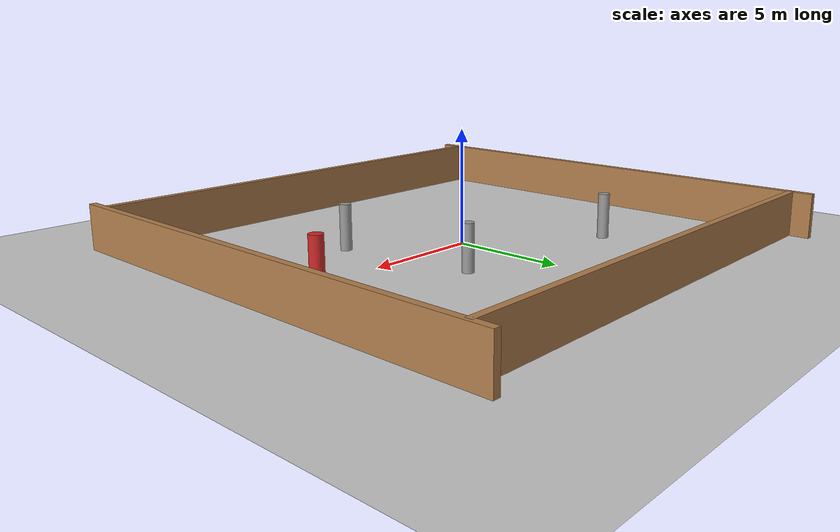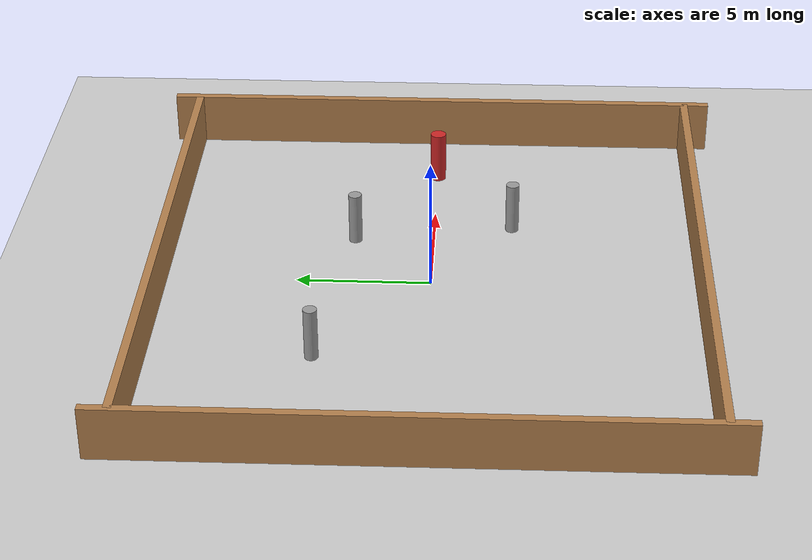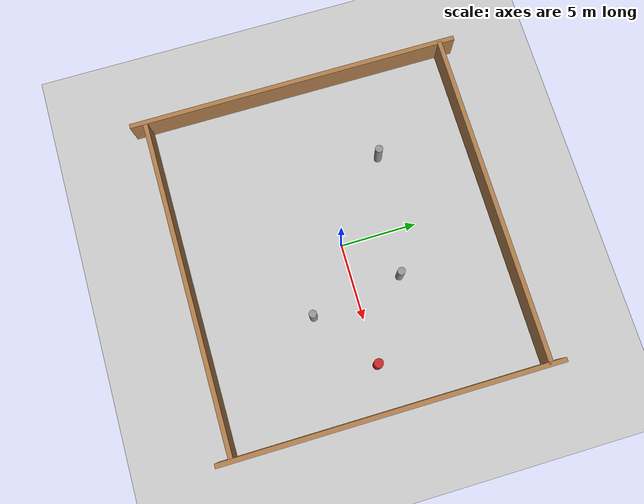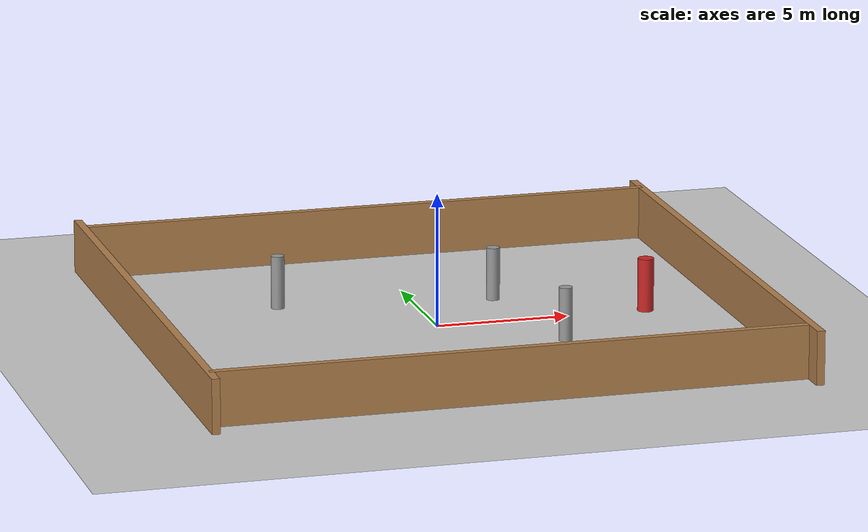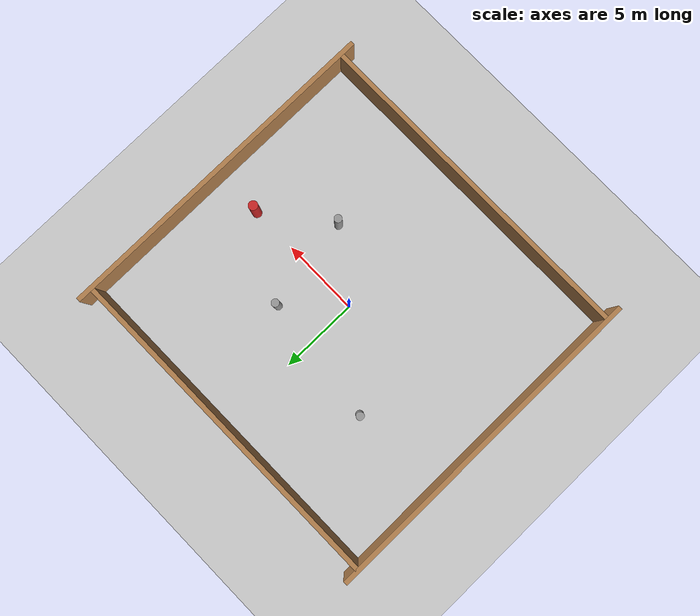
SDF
<?xml version="1.0" ?>
<sdf version="1.6">
  <world name="default">
    <gui>
      <camera name="user_camera">
        <pose>-5 0 2 0 0.3 0</pose>
      </camera>
    </gui>
    <physics type="ode">
      <ode>
        <solver>
          <type>quick</type>
          <iters>100</iters>
          <sor>1.0</sor>
        </solver>
        <constraints>
          <cfm>0.0</cfm>
          <erp>0.2</erp>
          <contact_max_correcting_vel>0.1</contact_max_correcting_vel>
          <contact_surface_layer>0.0</contact_surface_layer>
        </constraints>
      </ode>
      <real_time_update_rate>-1</real_time_update_rate>
    </physics>
    <gravity>0 0 -9.8</gravity>

    <!-- Plugin to publish /gazebo/model_states and /gazebo/link_states for ROS 2 -->
    <plugin name="gazebo_ros_state" filename="libgazebo_ros_state.so">
      <ros>
        <namespace>/gazebo</namespace>
      </ros>
      <update_rate>50.0</update_rate>
    </plugin>

    <include>
      <uri>model://sun</uri>
    </include>

    <model name="ground_plane">
      <static>true</static>
      <link name="link">
        <collision name="collision">
          <geometry>
            <plane>
              <normal>0 0 1</normal>
              <size>5000 5000</size>
            </plane>
          </geometry>
          <surface>
            <friction>
              <ode>
                <mu>100</mu>
                <mu2>50</mu2>
              </ode>
            </friction>
          </surface>
        </collision>
        <visual name="runway">
          <pose>0 0 0.005 0 0 0</pose>
          <cast_shadows>false</cast_shadows>
          <geometry>
            <plane>
              <normal>0 0 1</normal>
              <size>1829 45</size>
            </plane>
          </geometry>
          <material>
            <script>
              <uri>file://media/materials/scripts/gazebo.material</uri>
              <name>Gazebo/Runway</name>
            </script>
          </material>
        </visual>
        <visual name="grass">
          <pose>0 0 -0.1 0 0 0</pose>
          <cast_shadows>false</cast_shadows>
          <geometry>
            <plane>
              <normal>0 0 1</normal>
              <size>5000 5000</size>
            </plane>
          </geometry>
          <material>
            <script>
              <uri>file://media/materials/scripts/gazebo.material</uri>
              <name>Gazebo/Grass</name>
            </script>
          </material>
        </visual>
      </link>
    </model>

    <!-- ==================== Environmental Obstacles for LiDAR Range Testing ==================== -->
    <!-- Pillar 1 at ~4.2m (Front-Left) -->
    <model name="pillar_1">
      <static>true</static>
      <pose>3.0 3.0 1.0 0 0 0</pose>
      <link name="link">
        <collision name="collision">
          <geometry><cylinder><radius>0.25</radius><length>2.0</length></cylinder></geometry>
        </collision>
        <visual name="visual">
          <geometry><cylinder><radius>0.25</radius><length>2.0</length></cylinder></geometry>
          <material><script><name>Gazebo/Grey</name><uri>file://media/materials/scripts/gazebo.material</uri></script></material>
        </visual>
      </link>
    </model>

    <!-- Pillar 2 at 5.0m (Front-Right) -->
    <model name="pillar_2">
      <static>true</static>
      <pose>4.0 -3.0 1.0 0 0 0</pose>
      <link name="link">
        <collision name="collision">
          <geometry><cylinder><radius>0.25</radius><length>2.0</length></cylinder></geometry>
        </collision>
        <visual name="visual">
          <geometry><cylinder><radius>0.25</radius><length>2.0</length></cylinder></geometry>
          <material><script><name>Gazebo/Grey</name><uri>file://media/materials/scripts/gazebo.material</uri></script></material>
        </visual>
      </link>
    </model>

    <!-- Pillar 3 at 8.0m (Straight Forward) -->
    <model name="pillar_3">
      <static>true</static>
      <pose>8.0 0.0 1.0 0 0 0</pose>
      <link name="link">
        <collision name="collision">
          <geometry><cylinder><radius>0.3</radius><length>2.0</length></cylinder></geometry>
        </collision>
        <visual name="visual">
          <geometry><cylinder><radius>0.3</radius><length>2.0</length></cylinder></geometry>
          <material><script><name>Gazebo/Red</name><uri>file://media/materials/scripts/gazebo.material</uri></script></material>
        </visual>
      </link>
    </model>

    <!-- Pillar 4 at ~6.4m (Rear-Left) -->
    <model name="pillar_4">
      <static>true</static>
      <pose>-5.0 4.0 1.0 0 0 0</pose>
      <link name="link">
        <collision name="collision">
          <geometry><cylinder><radius>0.25</radius><length>2.0</length></cylinder></geometry>
        </collision>
        <visual name="visual">
          <geometry><cylinder><radius>0.25</radius><length>2.0</length></cylinder></geometry>
          <material><script><name>Gazebo/Grey</name><uri>file://media/materials/scripts/gazebo.material</uri></script></material>
        </visual>
      </link>
    </model>

    <!-- Outer Perimeter Walls (at 10m - 11m to test up to max 12m LiDAR range) -->
    <model name="wall_north">
      <static>true</static>
      <pose>11.0 0.0 1.0 0 0 0</pose>
      <link name="link">
        <collision name="collision">
          <geometry><box><size>0.3 22.0 2.0</size></box></geometry>
        </collision>
        <visual name="visual">
          <geometry><box><size>0.3 22.0 2.0</size></box></geometry>
          <material><script><name>Gazebo/Wood</name><uri>file://media/materials/scripts/gazebo.material</uri></script></material>
        </visual>
      </link>
    </model>

    <model name="wall_south">
      <static>true</static>
      <pose>-11.0 0.0 1.0 0 0 0</pose>
      <link name="link">
        <collision name="collision">
          <geometry><box><size>0.3 22.0 2.0</size></box></geometry>
        </collision>
        <visual name="visual">
          <geometry><box><size>0.3 22.0 2.0</size></box></geometry>
          <material><script><name>Gazebo/Wood</name><uri>file://media/materials/scripts/gazebo.material</uri></script></material>
        </visual>
      </link>
    </model>

    <model name="wall_east">
      <static>true</static>
      <pose>0.0 10.0 1.0 0 0 0</pose>
      <link name="link">
        <collision name="collision">
          <geometry><box><size>22.0 0.3 2.0</size></box></geometry>
        </collision>
        <visual name="visual">
          <geometry><box><size>22.0 0.3 2.0</size></box></geometry>
          <material><script><name>Gazebo/Wood</name><uri>file://media/materials/scripts/gazebo.material</uri></script></material>
        </visual>
      </link>
    </model>

    <model name="wall_west">
      <static>true</static>
      <pose>0.0 -10.0 1.0 0 0 0</pose>
      <link name="link">
        <collision name="collision">
          <geometry><box><size>22.0 0.3 2.0</size></box></geometry>
        </collision>
        <visual name="visual">
          <geometry><box><size>22.0 0.3 2.0</size></box></geometry>
          <material><script><name>Gazebo/Wood</name><uri>file://media/materials/scripts/gazebo.material</uri></script></material>
        </visual>
      </link>
    </model>

  </world>
</sdf>
